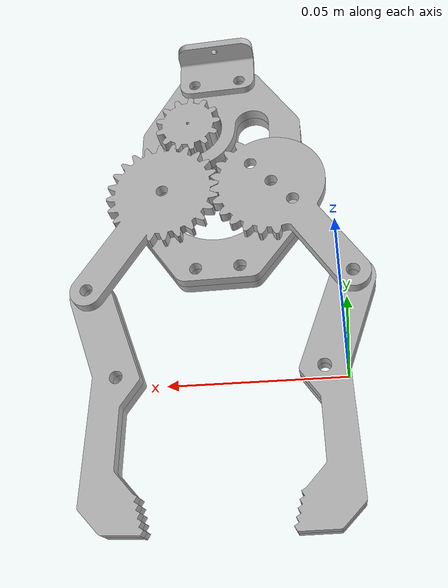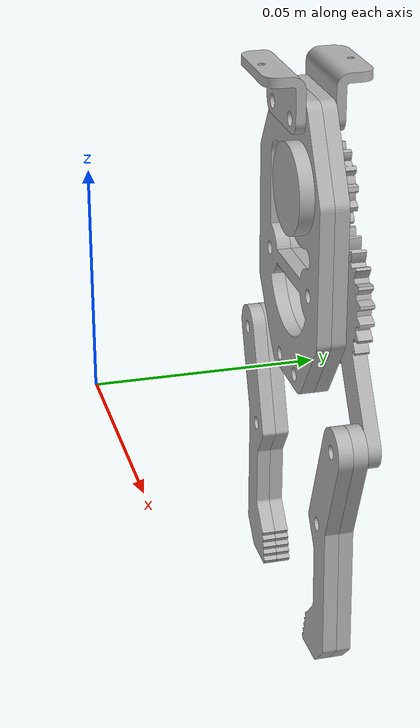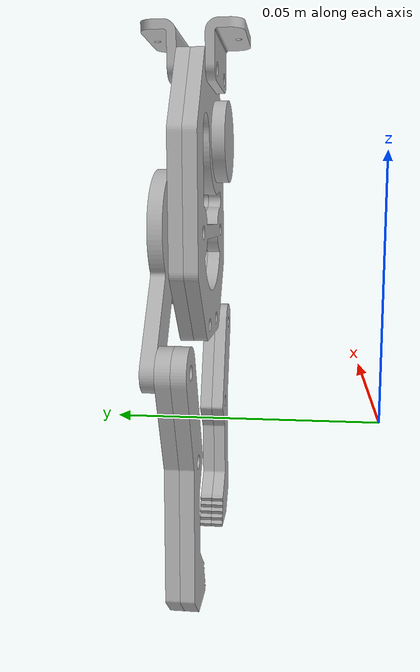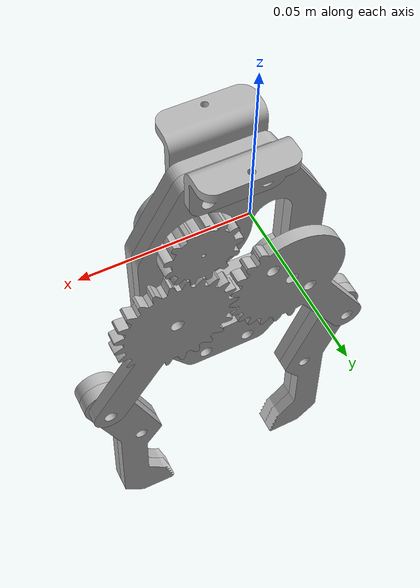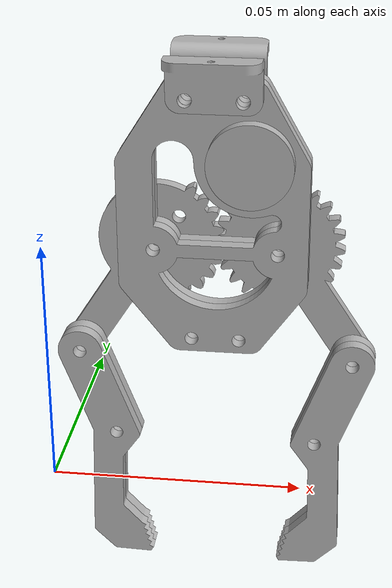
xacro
<?xml version="1.0" ?>
<robot name="test1" xmlns:xacro="http://www.ros.org/wiki/xacro">

<xacro:include filename="$(find test1_description)/urdf/materials.xacro" />
<xacro:include filename="$(find test1_description)/urdf/test1.trans" />
<xacro:include filename="$(find test1_description)/urdf/test1.gazebo" />
<link name="base_link">
  <inertial>
    <origin xyz="0.027546042511191537 0.036831357652983635 0.04117434358310064" rpy="0 0 0"/>
    <mass value="0.00414055309515801"/>
    <inertia ixx="1e-06" iyy="2e-06" izz="1e-06" ixy="0.0" iyz="0.0" ixz="0.0"/>
  </inertial>
  <visual>
    <origin xyz="0 0 0" rpy="0 0 0"/>
    <geometry>
      <mesh filename="package://test1_description/meshes/base_link.stl" scale="0.001 0.001 0.001"/>
    </geometry>
    <material name="silver"/>
  </visual>
  <collision>
    <origin xyz="0 0 0" rpy="0 0 0"/>
    <geometry>
      <mesh filename="package://test1_description/meshes/base_link.stl" scale="0.001 0.001 0.001"/>
    </geometry>
  </collision>
</link>

<link name="base_link2_1">
  <inertial>
    <origin xyz="-0.008630957488808464 0.0015003576529836263 -0.014275656416899353" rpy="0 0 0"/>
    <mass value="0.00414055309515801"/>
    <inertia ixx="1e-06" iyy="2e-06" izz="1e-06" ixy="0.0" iyz="-0.0" ixz="0.0"/>
  </inertial>
  <visual>
    <origin xyz="-0.036177 -0.038331 -0.05545" rpy="0 0 0"/>
    <geometry>
      <mesh filename="package://test1_description/meshes/base_link2_1.stl" scale="0.001 0.001 0.001"/>
    </geometry>
    <material name="silver"/>
  </visual>
  <collision>
    <origin xyz="-0.036177 -0.038331 -0.05545" rpy="0 0 0"/>
    <geometry>
      <mesh filename="package://test1_description/meshes/base_link2_1.stl" scale="0.001 0.001 0.001"/>
    </geometry>
  </collision>
</link>

<link name="gear_1">
  <inertial>
    <origin xyz="-3.2196529345385194e-08 0.002478099906269071 4.239999021118934e-07" rpy="0 0 0"/>
    <mass value="0.002392595797182972"/>
    <inertia ixx="0.0" iyy="0.0" izz="0.0" ixy="0.0" iyz="0.0" ixz="0.0"/>
  </inertial>
  <visual>
    <origin xyz="-0.036177 -0.035331 -0.05545" rpy="0 0 0"/>
    <geometry>
      <mesh filename="package://test1_description/meshes/gear_1.stl" scale="0.001 0.001 0.001"/>
    </geometry>
    <material name="silver"/>
  </visual>
  <collision>
    <origin xyz="-0.036177 -0.035331 -0.05545" rpy="0 0 0"/>
    <geometry>
      <mesh filename="package://test1_description/meshes/gear_1.stl" scale="0.001 0.001 0.001"/>
    </geometry>
  </collision>
</link>

<link name="To_robot_arm1_1">
  <inertial>
    <origin xyz="-0.006000032196536293 0.005414347155839196 0.005010724007801032" rpy="0 0 0"/>
    <mass value="0.000642695785022662"/>
    <inertia ixx="0.0" iyy="0.0" izz="0.0" ixy="-0.0" iyz="-0.0" ixz="-0.0"/>
  </inertial>
  <visual>
    <origin xyz="-0.034677 -0.038331 -0.06905" rpy="0 0 0"/>
    <geometry>
      <mesh filename="package://test1_description/meshes/To_robot_arm1_1.stl" scale="0.001 0.001 0.001"/>
    </geometry>
    <material name="silver"/>
  </visual>
  <collision>
    <origin xyz="-0.034677 -0.038331 -0.06905" rpy="0 0 0"/>
    <geometry>
      <mesh filename="package://test1_description/meshes/To_robot_arm1_1.stl" scale="0.001 0.001 0.001"/>
    </geometry>
  </collision>
</link>

<link name="To_robot_arm2_1">
  <inertial>
    <origin xyz="-0.0060000321965224986 -0.0024136318498719223 0.00501072400780099" rpy="0 0 0"/>
    <mass value="0.0006426957850226614"/>
    <inertia ixx="0.0" iyy="0.0" izz="0.0" ixy="-0.0" iyz="0.0" ixz="0.0"/>
  </inertial>
  <visual>
    <origin xyz="-0.034677 -0.035331 -0.06905" rpy="0 0 0"/>
    <geometry>
      <mesh filename="package://test1_description/meshes/To_robot_arm2_1.stl" scale="0.001 0.001 0.001"/>
    </geometry>
    <material name="silver"/>
  </visual>
  <collision>
    <origin xyz="-0.034677 -0.035331 -0.06905" rpy="0 0 0"/>
    <geometry>
      <mesh filename="package://test1_description/meshes/To_robot_arm2_1.stl" scale="0.001 0.001 0.001"/>
    </geometry>
  </collision>
</link>

<link name="gear_arm2_1">
  <inertial>
    <origin xyz="-0.002481515906408797 0.00450035749885868 -0.004544950487246003" rpy="0 0 0"/>
    <mass value="0.0021305684489602316"/>
    <inertia ixx="0.0" iyy="0.0" izz="0.0" ixy="-0.0" iyz="-0.0" ixz="-0.0"/>
  </inertial>
  <visual>
    <origin xyz="-0.015177 -0.038331 -0.035" rpy="0 0 0"/>
    <geometry>
      <mesh filename="package://test1_description/meshes/gear_arm2_1.stl" scale="0.001 0.001 0.001"/>
    </geometry>
    <material name="silver"/>
  </visual>
  <collision>
    <origin xyz="-0.015177 -0.038331 -0.035" rpy="0 0 0"/>
    <geometry>
      <mesh filename="package://test1_description/meshes/gear_arm2_1.stl" scale="0.001 0.001 0.001"/>
    </geometry>
  </collision>
</link>

<link name="gear_arm1_1">
  <inertial>
    <origin xyz="0.00301568374942323 0.004500357652983643 -0.004585746781354073" rpy="0 0 0"/>
    <mass value="0.002076813335488458"/>
    <inertia ixx="0.0" iyy="0.0" izz="0.0" ixy="0.0" iyz="0.0" ixz="0.0"/>
  </inertial>
  <visual>
    <origin xyz="-0.042177 -0.038331 -0.035" rpy="0 0 0"/>
    <geometry>
      <mesh filename="package://test1_description/meshes/gear_arm1_1.stl" scale="0.001 0.001 0.001"/>
    </geometry>
    <material name="silver"/>
  </visual>
  <collision>
    <origin xyz="-0.042177 -0.038331 -0.035" rpy="0 0 0"/>
    <geometry>
      <mesh filename="package://test1_description/meshes/gear_arm1_1.stl" scale="0.001 0.001 0.001"/>
    </geometry>
  </collision>
</link>

<link name="gripper_arm1_1_1">
  <inertial>
    <origin xyz="-0.00526100966759728 -0.0014996423470163625 -0.024320356765862538" rpy="0 0 0"/>
    <mass value="0.001599703251413659"/>
    <inertia ixx="0.0" iyy="0.0" izz="0.0" ixy="-0.0" iyz="-0.0" ixz="-0.0"/>
  </inertial>
  <visual>
    <origin xyz="-0.059209 -0.041331 -0.009099" rpy="0 0 0"/>
    <geometry>
      <mesh filename="package://test1_description/meshes/gripper_arm1_1_1.stl" scale="0.001 0.001 0.001"/>
    </geometry>
    <material name="silver"/>
  </visual>
  <collision>
    <origin xyz="-0.059209 -0.041331 -0.009099" rpy="0 0 0"/>
    <geometry>
      <mesh filename="package://test1_description/meshes/gripper_arm1_1_1.stl" scale="0.001 0.001 0.001"/>
    </geometry>
  </collision>
</link>

<link name="gripper_arm1_2_1">
  <inertial>
    <origin xyz="-0.00526100966759728 -0.0014996423470163694 -0.024320356765862538" rpy="0 0 0"/>
    <mass value="0.001599703251413659"/>
    <inertia ixx="0.0" iyy="0.0" izz="0.0" ixy="0.0" iyz="-0.0" ixz="-0.0"/>
  </inertial>
  <visual>
    <origin xyz="-0.059209 -0.038331 -0.009099" rpy="0 0 0"/>
    <geometry>
      <mesh filename="package://test1_description/meshes/gripper_arm1_2_1.stl" scale="0.001 0.001 0.001"/>
    </geometry>
    <material name="silver"/>
  </visual>
  <collision>
    <origin xyz="-0.059209 -0.038331 -0.009099" rpy="0 0 0"/>
    <geometry>
      <mesh filename="package://test1_description/meshes/gripper_arm1_2_1.stl" scale="0.001 0.001 0.001"/>
    </geometry>
  </collision>
</link>

<link name="gripper_arm2_1_1">
  <inertial>
    <origin xyz="0.005252855479296992 -0.0014996423470163694 -0.024321698636675347" rpy="0 0 0"/>
    <mass value="0.0015997032514136582"/>
    <inertia ixx="0.0" iyy="0.0" izz="0.0" ixy="-0.0" iyz="-0.0" ixz="0.0"/>
  </inertial>
  <visual>
    <origin xyz="0.002048 -0.041331 -0.009239" rpy="0 0 0"/>
    <geometry>
      <mesh filename="package://test1_description/meshes/gripper_arm2_1_1.stl" scale="0.001 0.001 0.001"/>
    </geometry>
    <material name="silver"/>
  </visual>
  <collision>
    <origin xyz="0.002048 -0.041331 -0.009239" rpy="0 0 0"/>
    <geometry>
      <mesh filename="package://test1_description/meshes/gripper_arm2_1_1.stl" scale="0.001 0.001 0.001"/>
    </geometry>
  </collision>
</link>

<link name="gripper-arm2_2_1">
  <inertial>
    <origin xyz="0.005252855479296992 -0.0014996423470163694 -0.024321698636675347" rpy="0 0 0"/>
    <mass value="0.0015997032514136582"/>
    <inertia ixx="0.0" iyy="0.0" izz="0.0" ixy="-0.0" iyz="0.0" ixz="0.0"/>
  </inertial>
  <visual>
    <origin xyz="0.002048 -0.038331 -0.009239" rpy="0 0 0"/>
    <geometry>
      <mesh filename="package://test1_description/meshes/gripper-arm2_2_1.stl" scale="0.001 0.001 0.001"/>
    </geometry>
    <material name="silver"/>
  </visual>
  <collision>
    <origin xyz="0.002048 -0.038331 -0.009239" rpy="0 0 0"/>
    <geometry>
      <mesh filename="package://test1_description/meshes/gripper-arm2_2_1.stl" scale="0.001 0.001 0.001"/>
    </geometry>
  </collision>
</link>

<joint name="joint_2" type="fixed">
  <origin xyz="0.036177 0.038331 0.05545" rpy="0 0 0"/>
  <parent link="base_link"/>
  <child link="base_link2_1"/>
</joint>

<joint name="joint_3" type="continuous">
  <origin xyz="0.036177 0.035331 0.05545" rpy="0 0 0"/>
  <parent link="base_link"/>
  <child link="gear_1"/>
  <axis xyz="0.0 1.0 0.0"/>
</joint>

<joint name="joint_4" type="fixed">
  <origin xyz="0.034677 0.038331 0.06905" rpy="0 0 0"/>
  <parent link="base_link"/>
  <child link="To_robot_arm1_1"/>
</joint>

<joint name="joint_5" type="fixed">
  <origin xyz="0.034677 0.035331 0.06905" rpy="0 0 0"/>
  <parent link="base_link"/>
  <child link="To_robot_arm2_1"/>
</joint>

<joint name="ȸ�� 6" type="revolute">
  <origin xyz="0.015177 0.038331 0.035" rpy="0 0 0"/>
  <parent link="base_link"/>
  <child link="gear_arm2_1"/>
  <axis xyz="0.0 1.0 0.0"/>
  <limit upper="1.047198" lower="0.0" effort="100" velocity="100"/>
</joint>

<joint name="ȸ�� 7" type="revolute">
  <origin xyz="0.042177 0.038331 0.035" rpy="0 0 0"/>
  <parent link="base_link"/>
  <child link="gear_arm1_1"/>
  <axis xyz="0.0 1.0 0.0"/>
  <limit upper="0.0" lower="-1.047198" effort="100" velocity="100"/>
</joint>

<joint name="joint_8" type="fixed">
  <origin xyz="0.017032 0.003 -0.025901" rpy="0 0 0"/>
  <parent link="gear_arm1_1"/>
  <child link="gripper_arm1_1_1"/>
</joint>

<joint name="joint_9" type="fixed">
  <origin xyz="0.0 -0.003 0.0" rpy="0 0 0"/>
  <parent link="gripper_arm1_1_1"/>
  <child link="gripper_arm1_2_1"/>
</joint>

<joint name="joint_10" type="fixed">
  <origin xyz="-0.017225 0.003 -0.025761" rpy="0 0 0"/>
  <parent link="gear_arm2_1"/>
  <child link="gripper_arm2_1_1"/>
</joint>

<joint name="joint_11" type="fixed">
  <origin xyz="0.0 -0.003 0.0" rpy="0 0 0"/>
  <parent link="gripper_arm2_1_1"/>
  <child link="gripper-arm2_2_1"/>
</joint>

</robot>

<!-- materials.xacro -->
<robot name="test1" xmlns:xacro="http://www.ros.org/wiki/xacro" >

<material name="silver">
  <color rgba="0.700 0.700 0.700 1.000"/>
</material>

</robot>

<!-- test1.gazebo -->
<robot name="test1" xmlns:xacro="http://www.ros.org/wiki/xacro" >

<xacro:property name="body_color" value="Gazebo/Silver" />

<gazebo>
  <plugin name="control" filename="libgazebo_ros_control.so"/>
</gazebo>
<gazebo reference="base_link">
  <material>${body_color}</material>
  <mu1>0.2</mu1>
  <mu2>0.2</mu2>
  <selfCollide>true</selfCollide>
  <gravity>true</gravity>
</gazebo>

<gazebo reference="base_link2_1">
  <material>${body_color}</material>
  <mu1>0.2</mu1>
  <mu2>0.2</mu2>
  <selfCollide>true</selfCollide>
</gazebo>

<gazebo reference="gear_1">
  <material>${body_color}</material>
  <mu1>0.2</mu1>
  <mu2>0.2</mu2>
  <selfCollide>true</selfCollide>
</gazebo>

<gazebo reference="To_robot_arm1_1">
  <material>${body_color}</material>
  <mu1>0.2</mu1>
  <mu2>0.2</mu2>
  <selfCollide>true</selfCollide>
</gazebo>

<gazebo reference="To_robot_arm2_1">
  <material>${body_color}</material>
  <mu1>0.2</mu1>
  <mu2>0.2</mu2>
  <selfCollide>true</selfCollide>
</gazebo>

<gazebo reference="gear_arm2_1">
  <material>${body_color}</material>
  <mu1>0.2</mu1>
  <mu2>0.2</mu2>
  <selfCollide>true</selfCollide>
</gazebo>

<gazebo reference="gear_arm1_1">
  <material>${body_color}</material>
  <mu1>0.2</mu1>
  <mu2>0.2</mu2>
  <selfCollide>true</selfCollide>
</gazebo>

<gazebo reference="gripper_arm1_1_1">
  <material>${body_color}</material>
  <mu1>0.2</mu1>
  <mu2>0.2</mu2>
  <selfCollide>true</selfCollide>
</gazebo>

<gazebo reference="gripper_arm1_2_1">
  <material>${body_color}</material>
  <mu1>0.2</mu1>
  <mu2>0.2</mu2>
  <selfCollide>true</selfCollide>
</gazebo>

<gazebo reference="gripper_arm2_1_1">
  <material>${body_color}</material>
  <mu1>0.2</mu1>
  <mu2>0.2</mu2>
  <selfCollide>true</selfCollide>
</gazebo>

<gazebo reference="gripper-arm2_2_1">
  <material>${body_color}</material>
  <mu1>0.2</mu1>
  <mu2>0.2</mu2>
  <selfCollide>true</selfCollide>
</gazebo>

</robot>
